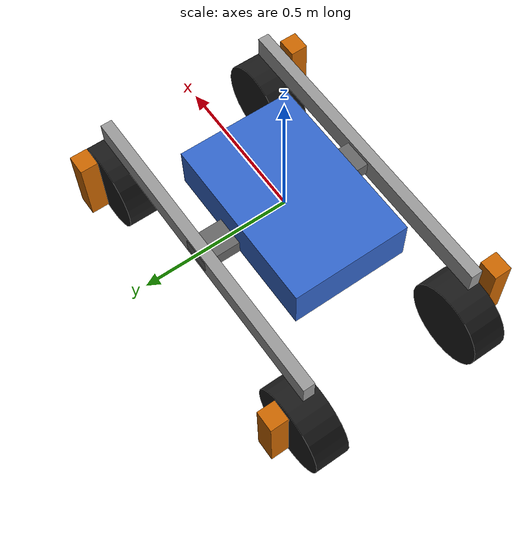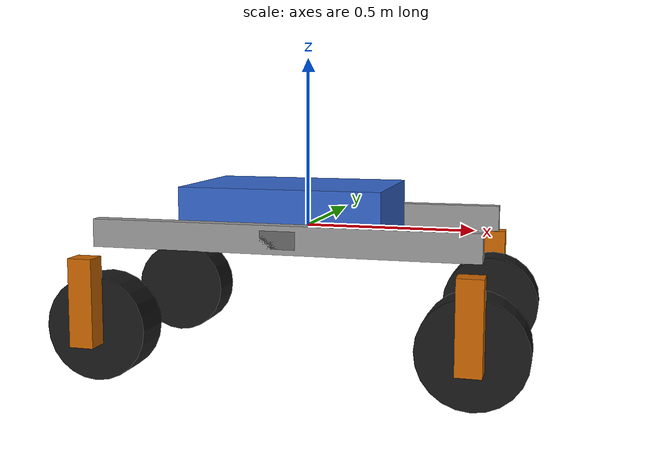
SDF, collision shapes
<?xml version="1.0"?>
<sdf version="1.10">
  <model name="indomitus_s1">

    <!-- ===================== BASE ===================== -->
    <link name="base_link">
      <inertial>
        <mass>0.1</mass>
        <inertia>
          <ixx>0.01</ixx><iyy>0.01</iyy><izz>0.01</izz>
          <ixy>0</ixy><ixz>0</ixz><iyz>0</iyz>
        </inertia>
      </inertial>
    </link>

    <!-- ===================== SUSPENSION BASE AXII ===================== -->
    <link name="main_body_link">
      <pose relative_to="base_link">-0.04 0 0.05 0 0 0</pose>
      <inertial>
        <mass>40.0</mass>
          <inertia>
            <ixx>0.608</ixx>
            <iyy>1.283</iyy>
            <izz>1.733</izz>
            <ixy>0</ixy><ixz>0</ixz><iyz>0</iyz>
          </inertia>
      </inertial>
      <visual name="visual">
        <geometry>
          <box><size>0.6 0.4 0.2</size></box>
        </geometry>
        <material>
          <ambient>0.1 0.2 0.5 1</ambient>
          <diffuse>0.2 0.4 0.8 1</diffuse>
          <specular>0.1 0.1 0.2 1</specular>
        </material>
      </visual>
      <collision name="collision">
        <geometry>
          <box><size>0.6 0.4 0.15</size></box>
        </geometry>
      </collision>
    </link>

    <link name="suspension_base_axii_link">
      <pose relative_to="base_link">0 0 0 0 0 0</pose>
      <inertial>
        <mass>0.5</mass>
        <inertia>
          <ixx>0.5</ixx><iyy>0.5</iyy><izz>1.0</izz>
          <ixy>0</ixy><ixz>0</ixz><iyz>0</iyz>
        </inertia>
      </inertial>
      <visual name="visual">
        <pose>0 -0.325 0 0 0 0</pose>
        <geometry>
          <mesh>
            <uri>package://indomitus_rover_description/meshes/suspension/central_axii.stl</uri>
            <scale>0.001 0.001 0.001</scale>
          </mesh>
        </geometry>
        <material>
          <ambient>0.6 0.2 0.2 1</ambient>
          <diffuse>0.4 0.4 0.4 1</diffuse>
          <specular>0.3 0.3 0.3 1</specular>
        </material>
      </visual>
      <collision name="collision">
        <geometry>
          <box><size>0.1 0.65 0.05</size></box>
        </geometry>
      </collision>
    </link>

    <joint name="suspension_base_axii_joint" type="fixed">
      <parent>base_link</parent>
      <child>suspension_base_axii_link</child>
    </joint>

    <joint name="main_body_joint" type="revolute">
      <parent>suspension_base_axii_link</parent>
      <child>main_body_link</child>
      <axis>
        <xyz>0 1 0</xyz>
        <limit>
          <lower>-1.0</lower><upper>1.0</upper>
          <effort>10000</effort><velocity>5.0</velocity>
        </limit>
        <dynamics>
          <damping>20.0</damping>
          <friction>1.0</friction>
        </dynamics>
      </axis>
    </joint>

    <!-- ===================== LEFT ROCKER ===================== -->
    <joint name="l_rocker_joint" type="revolute">
      <pose relative_to="suspension_base_axii_link">0 0.305 0 0 0 0</pose>
      <parent>suspension_base_axii_link</parent>
      <child>l_rocker_link</child>
      <axis>
        <xyz>0 1 0</xyz>
        <limit>
          <lower>-0.5</lower><upper>0.5</upper>
          <effort>100</effort><velocity>1.0</velocity>
        </limit>
        <dynamics><damping>0.5</damping><friction>0.1</friction></dynamics>
      </axis>
    </joint>

    <link name="l_rocker_link">
      <pose relative_to="l_rocker_joint">0 0 0 0 0 0</pose>
      <inertial>
        <mass>1.0</mass>
        <inertia>
          <ixx>0.01</ixx><iyy>0.01</iyy><izz>0.01</izz>
          <ixy>0</ixy><ixz>0</ixz><iyz>0</iyz>
        </inertia>
      </inertial>
      <visual name="visual">
        <pose>-0.55 0.02 -0.04 0 0 0</pose>
        <geometry>
          <mesh>
            <uri>package://indomitus_rover_description/meshes/suspension/rocker.stl</uri>
            <scale>0.001 0.001 0.001</scale>
          </mesh>
        </geometry>
        <material>
          <ambient>0.3 0.3 0.3 1</ambient>
          <diffuse>0.6 0.6 0.6 1</diffuse>
          <specular>0.2 0.2 0.2 1</specular>
        </material>
      </visual>
      <collision name="collision">
        <geometry>
          <box><size>1.1 0.04 0.08</size></box>
        </geometry>
      </collision>
    </link>

    <!-- ===================== RIGHT ROCKER ===================== -->
    <joint name="r_rocker_joint" type="revolute">
      <pose relative_to="suspension_base_axii_link">0 -0.305 0 0 0 0</pose>
      <parent>suspension_base_axii_link</parent>
      <child>r_rocker_link</child>
      <axis>
        <xyz>0 1 0</xyz>
        <limit>
          <lower>-0.5</lower><upper>0.5</upper>
          <effort>100</effort><velocity>1.0</velocity>
        </limit>
        <dynamics><damping>0.5</damping><friction>0.1</friction></dynamics>
      </axis>
    </joint>

    <link name="r_rocker_link">
      <pose relative_to="r_rocker_joint">0 0 0 0 0 0</pose>
      <inertial>
        <mass>1.0</mass>
        <inertia>
          <ixx>0.01</ixx><iyy>0.01</iyy><izz>0.01</izz>
          <ixy>0</ixy><ixz>0</ixz><iyz>0</iyz>
        </inertia>
      </inertial>
      <visual name="visual">
        <pose>-0.55 0.02 -0.04 0 0 0</pose>
        <geometry>
          <mesh>
            <uri>package://indomitus_rover_description/meshes/suspension/rocker.stl</uri>
            <scale>0.001 0.001 0.001</scale>
          </mesh>
        </geometry>
        <material>
          <ambient>0.3 0.3 0.3 1</ambient>
          <diffuse>0.6 0.6 0.6 1</diffuse>
          <specular>0.2 0.2 0.2 1</specular>
        </material>
      </visual>
      <collision name="collision">
        <geometry>
          <box><size>1.1 0.04 0.08</size></box>
        </geometry>
      </collision>
    </link>

    <!-- ===================== FRONT LEFT WHEEL ===================== -->
    <joint name="fl_wheel_mount_joint" type="revolute">
      <pose relative_to="l_rocker_link">0.53 0 0 0 0 0</pose>
      <parent>l_rocker_link</parent>
      <child>fl_wheel_mount_link</child>
      <axis>
        <xyz>0 0 1</xyz>
        <limit>
          <lower>-1.5708</lower><upper>1.5708</upper>
          <effort>500</effort><velocity>2</velocity>
        </limit>
        <dynamics>
          <damping>0.5</damping>
          <friction>0.3</friction>
        </dynamics>
      </axis>
    </joint>

    <link name="fl_wheel_mount_link">
      <pose relative_to="fl_wheel_mount_joint">0 0 0 0 0 0</pose>
      <inertial>
        <mass>0.162</mass>
        <inertia>
          <ixx>0.0002</ixx><iyy>0.00012</iyy><izz>0.00012</izz>
          <ixy>0</ixy><ixz>0</ixz><iyz>0</iyz>
        </inertia>
      </inertial>
      <visual name="visual">
        <pose>0 -0.06 -0.269 0 0 0</pose>
        <geometry>
          <mesh>
            <uri>package://indomitus_rover_description/meshes/suspension/wheel_mount.stl</uri>
            <scale>0.001 0.001 0.001</scale>
          </mesh>
        </geometry>
        <material>
          <ambient>0.6 0.3 0.0 1</ambient>
          <diffuse>0.8 0.4 0.0 1</diffuse>
          <specular>0.1 0.1 0.1 1</specular>
        </material>
      </visual>
      <collision name="collision">
        <pose>0 0.11125 -0.18 0 0 0</pose>
        <geometry>
          <box><size>0.07 0.0625 0.25</size></box>
        </geometry>
      </collision>
    </link>

    <joint name="fl_wheel_joint" type="revolute">
      <pose relative_to="fl_wheel_mount_link">0 0 -0.27 0 0 0</pose>
      <parent>fl_wheel_mount_link</parent>
      <child>fl_wheel_link</child>
      <axis>
        <xyz>0 1 0</xyz>
        <limit>
          <lower>-1e+16</lower><upper>1e+16</upper>
          <effort>100</effort><velocity>10</velocity>
        </limit>
      </axis>
    </joint>

    <link name="fl_wheel_link">
      <pose relative_to="fl_wheel_joint">0 0 0 0 0 0</pose>
      <inertial>
        <mass>0.5</mass>
        <inertia>
          <ixx>0.00563</ixx><iyy>0.00563</iyy><izz>0.01125</izz>
          <ixy>0</ixy><ixz>0</ixz><iyz>0</iyz>
        </inertia>
      </inertial>
      <visual name="visual">
        <pose>0 -0.06 0 -1.5708 0 0</pose>
        <geometry>
          <mesh>
            <uri>package://indomitus_rover_description/meshes/suspension/wheel.stl</uri>
            <scale>0.001 0.001 0.001</scale>
          </mesh>
        </geometry>
        <material>
          <ambient>0.05 0.05 0.05 1</ambient>
          <diffuse>0.1 0.1 0.1 1</diffuse>
          <specular>0.05 0.05 0.05 1</specular>
        </material>
      </visual>
      <collision name="collision">
        <pose>0 0 0 1.5708 0 0</pose>
        <geometry>
          <cylinder><radius>0.15</radius><length>0.12</length></cylinder>
        </geometry>
      </collision>
    </link>

    <!-- ===================== FRONT RIGHT WHEEL ===================== -->
    <joint name="fr_wheel_mount_joint" type="revolute">
      <pose relative_to="r_rocker_link">0.53 0 0 0 0 0</pose>
      <parent>r_rocker_link</parent>
      <child>fr_wheel_mount_link</child>
      <axis>
        <xyz>0 0 1</xyz>
        <limit>
          <lower>-1.5708</lower><upper>1.5708</upper>
          <effort>500</effort><velocity>2</velocity>
        </limit>
        <dynamics>
          <damping>0.5</damping>
          <friction>0.3</friction>
        </dynamics>
      </axis>
    </joint>

    <link name="fr_wheel_mount_link">
      <pose relative_to="fr_wheel_mount_joint">0 0 0 0 0 0</pose>
      <inertial>
        <mass>0.162</mass>
        <inertia>
          <ixx>0.0002</ixx><iyy>0.00012</iyy><izz>0.00012</izz>
          <ixy>0</ixy><ixz>0</ixz><iyz>0</iyz>
        </inertia>
      </inertial>
      <visual name="visual">
        <pose>0 0.06 -0.269 0 0 3.14159</pose>
        <geometry>
          <mesh>
            <uri>package://indomitus_rover_description/meshes/suspension/wheel_mount.stl</uri>
            <scale>0.001 0.001 0.001</scale>
          </mesh>
        </geometry>
        <material>
          <ambient>0.6 0.3 0.0 1</ambient>
          <diffuse>0.8 0.4 0.0 1</diffuse>
          <specular>0.1 0.1 0.1 1</specular>
        </material>
      </visual>
      <collision name="collision">
        <pose>0 -0.11125 -0.18 0 0 0</pose>
        <geometry>
          <box><size>0.07 0.0625 0.25</size></box>
        </geometry>
      </collision>
    </link>

    <joint name="fr_wheel_joint" type="revolute">
      <pose relative_to="fr_wheel_mount_link">0 0 -0.27 0 0 0</pose>
      <parent>fr_wheel_mount_link</parent>
      <child>fr_wheel_link</child>
      <axis>
        <xyz>0 1 0</xyz>
        <limit>
          <lower>-1e+16</lower><upper>1e+16</upper>
          <effort>100</effort><velocity>10</velocity>
        </limit>
      </axis>
    </joint>

    <link name="fr_wheel_link">
      <pose relative_to="fr_wheel_joint">0 0 0 0 0 0</pose>
      <inertial>
        <mass>0.5</mass>
        <inertia>
          <ixx>0.00563</ixx><iyy>0.00563</iyy><izz>0.01125</izz>
          <ixy>0</ixy><ixz>0</ixz><iyz>0</iyz>
        </inertia>
      </inertial>
      <visual name="visual">
        <pose>0 0.06 0 -1.5708 0 3.14159</pose>
        <geometry>
          <mesh>
            <uri>package://indomitus_rover_description/meshes/suspension/wheel.stl</uri>
            <scale>0.001 0.001 0.001</scale>
          </mesh>
        </geometry>
        <material>
          <ambient>0.05 0.05 0.05 1</ambient>
          <diffuse>0.1 0.1 0.1 1</diffuse>
          <specular>0.05 0.05 0.05 1</specular>
        </material>
      </visual>
      <collision name="collision">
        <pose>0 0 0 -1.5708 0 0</pose>
        <geometry>
          <cylinder><radius>0.15</radius><length>0.12</length></cylinder>
        </geometry>
      </collision>
    </link>

    <!-- ===================== BACK LEFT WHEEL ===================== -->
    <joint name="bl_wheel_mount_joint" type="revolute">
      <pose relative_to="l_rocker_link">-0.53 0 0 0 0 0</pose>
      <parent>l_rocker_link</parent>
      <child>bl_wheel_mount_link</child>
      <axis>
        <xyz>0 0 1</xyz>
        <limit>
          <lower>-1.5708</lower><upper>1.5708</upper>
          <effort>500</effort><velocity>2</velocity>
        </limit>
        <dynamics>
          <damping>0.5</damping>
          <friction>0.3</friction>
        </dynamics>
      </axis>
    </joint>

    <link name="bl_wheel_mount_link">
      <pose relative_to="bl_wheel_mount_joint">0 0 0 0 0 0</pose>
      <inertial>
        <mass>0.162</mass>
        <inertia>
          <ixx>0.0002</ixx><iyy>0.00012</iyy><izz>0.00012</izz>
          <ixy>0</ixy><ixz>0</ixz><iyz>0</iyz>
        </inertia>
      </inertial>
      <visual name="visual">
        <pose>0 -0.06 -0.269 0 0 0</pose>
        <geometry>
          <mesh>
            <uri>package://indomitus_rover_description/meshes/suspension/wheel_mount.stl</uri>
            <scale>0.001 0.001 0.001</scale>
          </mesh>
        </geometry>
        <material>
          <ambient>0.6 0.3 0.0 1</ambient>
          <diffuse>0.8 0.4 0.0 1</diffuse>
          <specular>0.1 0.1 0.1 1</specular>
        </material>
      </visual>
      <collision name="collision">
        <pose>0 0.11125 -0.18 0 0 0</pose>
        <geometry>
          <box><size>0.07 0.0625 0.25</size></box>
        </geometry>
      </collision>
    </link>

    <joint name="bl_wheel_joint" type="revolute">
      <pose relative_to="bl_wheel_mount_link">0 0 -0.27 0 0 0</pose>
      <parent>bl_wheel_mount_link</parent>
      <child>bl_wheel_link</child>
      <axis>
        <xyz>0 1 0</xyz>
        <limit>
          <lower>-1e+16</lower><upper>1e+16</upper>
          <effort>100</effort><velocity>10</velocity>
        </limit>
      </axis>
    </joint>

    <link name="bl_wheel_link">
      <pose relative_to="bl_wheel_joint">0 0 0 0 0 0</pose>
      <inertial>
        <mass>0.5</mass>
        <inertia>
          <ixx>0.00563</ixx><iyy>0.00563</iyy><izz>0.01125</izz>
          <ixy>0</ixy><ixz>0</ixz><iyz>0</iyz>
        </inertia>
      </inertial>
      <visual name="visual">
        <pose>0 -0.06 0 -1.5708 0 0</pose>
        <geometry>
          <mesh>
            <uri>package://indomitus_rover_description/meshes/suspension/wheel.stl</uri>
            <scale>0.001 0.001 0.001</scale>
          </mesh>
        </geometry>
        <material>
          <ambient>0.05 0.05 0.05 1</ambient>
          <diffuse>0.1 0.1 0.1 1</diffuse>
          <specular>0.05 0.05 0.05 1</specular>
        </material>
      </visual>
      <collision name="collision">
        <pose>0 0 0 1.5708 0 0</pose>
        <geometry>
          <cylinder><radius>0.15</radius><length>0.12</length></cylinder>
        </geometry>
      </collision>
    </link>

    <!-- ===================== BACK RIGHT WHEEL ===================== -->
    <joint name="br_wheel_mount_joint" type="revolute">
      <pose relative_to="r_rocker_link">-0.53 0 0 0 0 0</pose>
      <parent>r_rocker_link</parent>
      <child>br_wheel_mount_link</child>
      <axis>
        <xyz>0 0 1</xyz>
        <limit>
          <lower>-1.5708</lower><upper>1.5708</upper>
          <effort>500</effort><velocity>2</velocity>
        </limit>
        <dynamics>
          <damping>0.5</damping>
          <friction>0.3</friction>
        </dynamics>
      </axis>
    </joint>

    <link name="br_wheel_mount_link">
      <pose relative_to="br_wheel_mount_joint">0 0 0 0 0 0</pose>
      <inertial>
        <mass>0.162</mass>
        <inertia>
          <ixx>0.0002</ixx><iyy>0.00012</iyy><izz>0.00012</izz>
          <ixy>0</ixy><ixz>0</ixz><iyz>0</iyz>
        </inertia>
      </inertial>
      <visual name="visual">
        <pose>0 0.06 -0.269 0 0 3.14159</pose>
        <geometry>
          <mesh>
            <uri>package://indomitus_rover_description/meshes/suspension/wheel_mount.stl</uri>
            <scale>0.001 0.001 0.001</scale>
          </mesh>
        </geometry>
        <material>
          <ambient>0.6 0.3 0.0 1</ambient>
          <diffuse>0.8 0.4 0.0 1</diffuse>
          <specular>0.1 0.1 0.1 1</specular>
        </material>
      </visual>
      <collision name="collision">
        <pose>0 -0.11125 -0.18 0 0 0</pose>
        <geometry>
          <box><size>0.07 0.0625 0.25</size></box>
        </geometry>
      </collision>
    </link>

    <joint name="br_wheel_joint" type="revolute">
      <pose relative_to="br_wheel_mount_link">0 0 -0.27 0 0 0</pose>
      <parent>br_wheel_mount_link</parent>
      <child>br_wheel_link</child>
      <axis>
        <xyz>0 1 0</xyz>
        <limit>
          <lower>-1e+16</lower><upper>1e+16</upper>
          <effort>100</effort><velocity>10</velocity>
        </limit>
      </axis>
    </joint>

    <link name="br_wheel_link">
      <pose relative_to="br_wheel_joint">0 0 0 0 0 0</pose>
      <inertial>
        <mass>0.5</mass>
        <inertia>
          <ixx>0.00563</ixx><iyy>0.00563</iyy><izz>0.01125</izz>
          <ixy>0</ixy><ixz>0</ixz><iyz>0</iyz>
        </inertia>
      </inertial>
      <visual name="visual">
        <pose>0 0.06 0 -1.5708 0 3.14159</pose>
        <geometry>
          <mesh>
            <uri>package://indomitus_rover_description/meshes/suspension/wheel.stl</uri>
            <scale>0.001 0.001 0.001</scale>
          </mesh>
        </geometry>
        <material>
          <ambient>0.05 0.05 0.05 1</ambient>
          <diffuse>0.1 0.1 0.1 1</diffuse>
          <specular>0.05 0.05 0.05 1</specular>
        </material>
      </visual>
      <collision name="collision">
        <pose>0 0 0 -1.5708 0 0</pose>
        <geometry>
          <cylinder><radius>0.15</radius><length>0.12</length></cylinder>
        </geometry>
      </collision>
    </link>

    <!-- ===================== PLUGINS ===================== -->

    <plugin filename="gz-sim-joint-state-publisher-system"
        name="gz::sim::systems::JointStatePublisher">
    </plugin>

    <plugin filename="gz-sim-joint-controller-system"
            name="gz::sim::systems::JointController">
      <joint_name>fl_wheel_joint</joint_name>
      <topic>/drive/fl_wheel</topic>
      <use_force_commands>false</use_force_commands>
    </plugin>

    <plugin filename="gz-sim-joint-controller-system"
            name="gz::sim::systems::JointController">
      <joint_name>fr_wheel_joint</joint_name>
      <topic>/drive/fr_wheel</topic>
      <use_force_commands>false</use_force_commands>
    </plugin>

    <plugin filename="gz-sim-joint-position-controller-system"
            name="gz::sim::systems::JointPositionController">
      <joint_name>main_body_joint</joint_name>
      <topic>/base_axii/angle</topic>
      <p_gain>100</p_gain><i_gain>0</i_gain><d_gain>5</d_gain>
    </plugin>

    <plugin filename="gz-sim-joint-controller-system"
            name="gz::sim::systems::JointController">
      <joint_name>bl_wheel_joint</joint_name>
      <topic>/drive/bl_wheel</topic>
      <use_force_commands>false</use_force_commands>
    </plugin>

    <plugin filename="gz-sim-joint-controller-system"
            name="gz::sim::systems::JointController">
      <joint_name>br_wheel_joint</joint_name>
      <topic>/drive/br_wheel</topic>
      <use_force_commands>false</use_force_commands>
    </plugin>

    <plugin filename="gz-sim-joint-position-controller-system"
            name="gz::sim::systems::JointPositionController">
      <joint_name>fl_wheel_mount_joint</joint_name>
      <topic>/steering/fl</topic>
      <p_gain>100</p_gain><i_gain>0.1</i_gain><d_gain>2.0</d_gain>
    </plugin>

    <plugin filename="gz-sim-joint-position-controller-system"
            name="gz::sim::systems::JointPositionController">
      <joint_name>fr_wheel_mount_joint</joint_name>
      <topic>/steering/fr</topic>
      <p_gain>100</p_gain><i_gain>0.1</i_gain><d_gain>2.0</d_gain>
    </plugin>

    <plugin filename="gz-sim-joint-position-controller-system"
            name="gz::sim::systems::JointPositionController">
      <joint_name>bl_wheel_mount_joint</joint_name>
      <topic>/steering/bl</topic>
      <p_gain>100</p_gain><i_gain>0.1</i_gain><d_gain>2.0</d_gain>
    </plugin>

    <plugin filename="gz-sim-joint-position-controller-system"
            name="gz::sim::systems::JointPositionController">
      <joint_name>br_wheel_mount_joint</joint_name>
      <topic>/steering/br</topic>
      <p_gain>100</p_gain><i_gain>0.1</i_gain><d_gain>2.0</d_gain>
    </plugin>

  </model>
</sdf>
